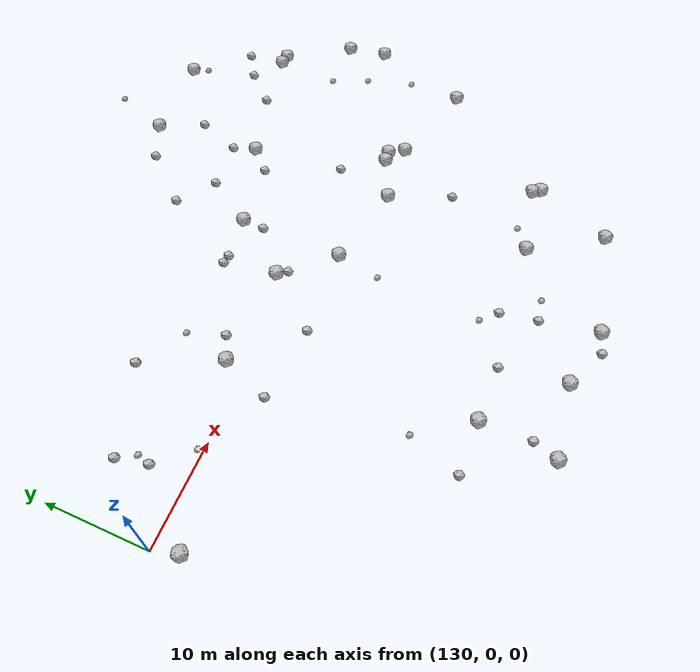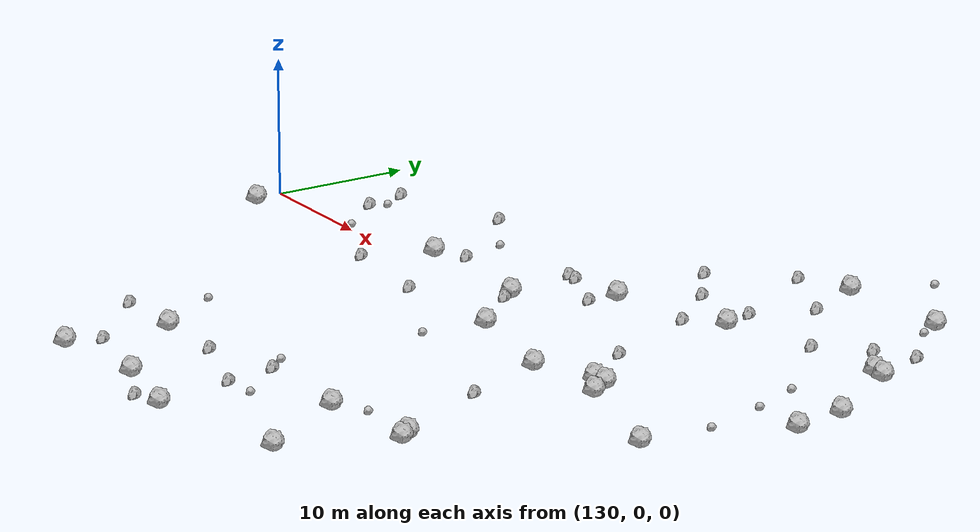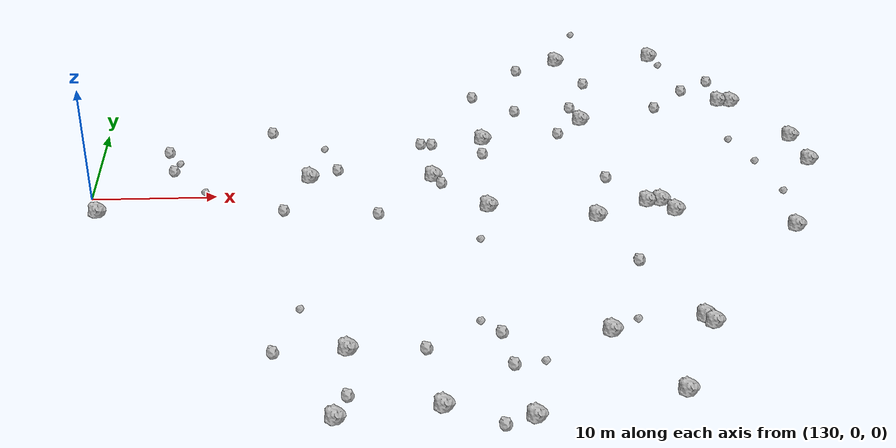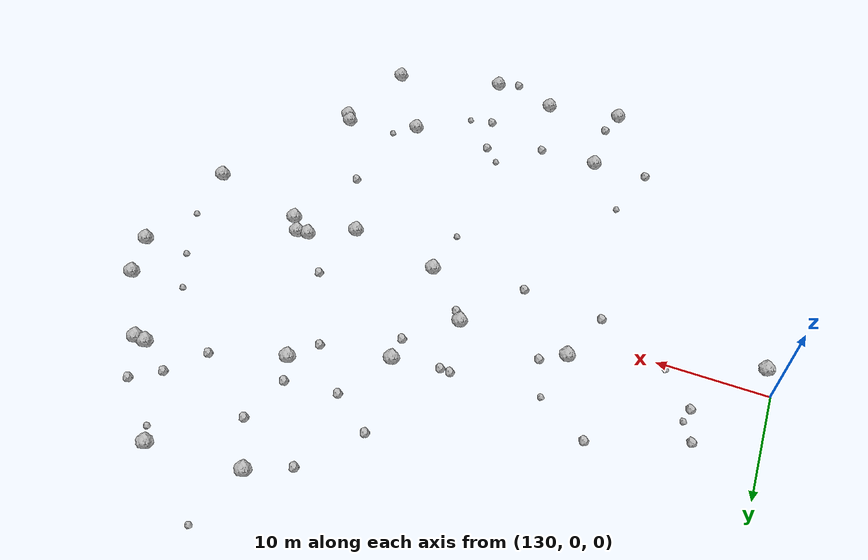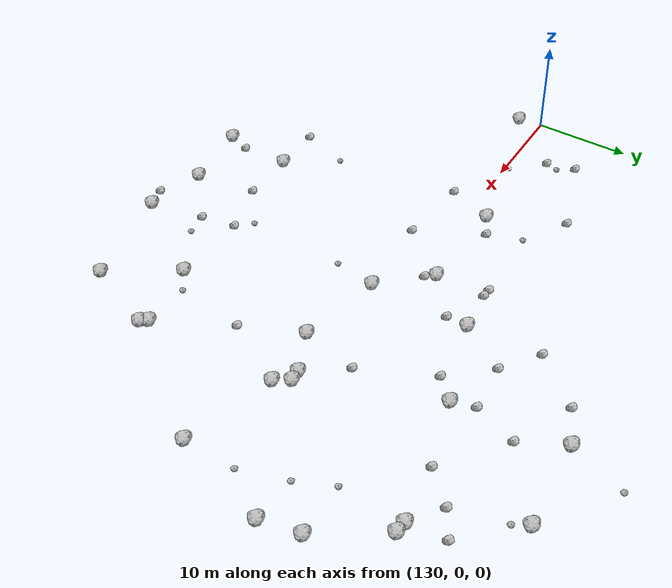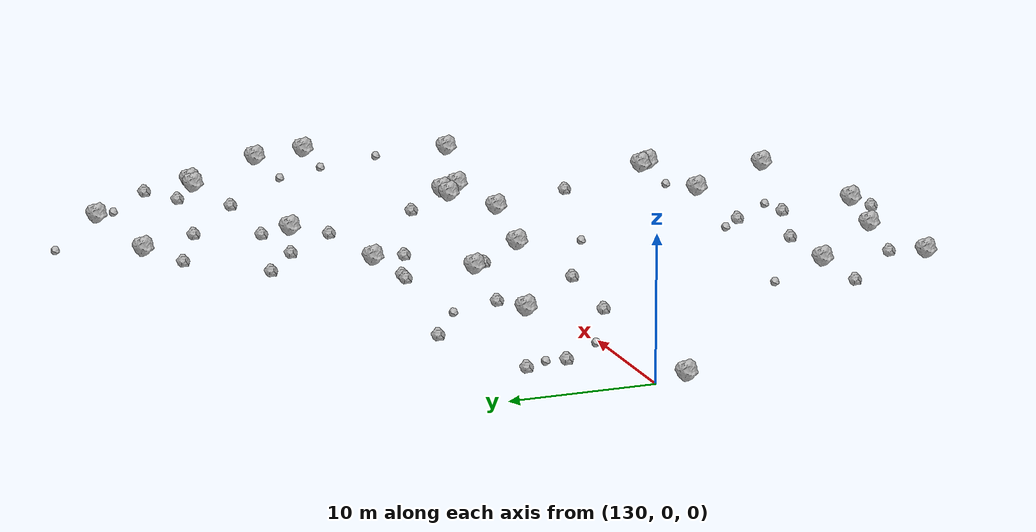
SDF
<sdf version="1.6">
 <world name="default">
  <include><uri>model://sun</uri></include>
  <model name="rock1_4_2">
   <include><uri>model://rock1</uri><pose>177.29037232289147 -18.6127513008162 0.5 0 0 0</pose></include>
  </model>
  <model name="rock1_4_3">
   <include><uri>model://rock1</uri><pose>178.22322640430951 22.167158721694875 0.5 0 0 0</pose></include>
  </model>
  <model name="rock1_4_4">
   <include><uri>model://rock1</uri><pose>176.75358904575535 -3.9160395961522916 0.5 0 0 0</pose></include>
  </model>
  <model name="rock1_4_5">
   <include><uri>model://rock1</uri><pose>150.99168697164066 -20.713417410371235 0.5 0 0 0</pose></include>
  </model>
  <model name="rock1_4_6">
   <include><uri>model://rock1</uri><pose>175.79030171845082 -2.4278279691967555 0.5 0 0 0</pose></include>
  </model>
  <model name="rock1_4_7">
   <include><uri>model://rock1</uri><pose>176.7934814069357 -17.88917487389655 0.5 0 0 0</pose></include>
  </model>
  <model name="rock1_4_8">
   <include><uri>model://rock1</uri><pose>169.45538080616674 21.585780402807238 0.5 0 0 0</pose></include>
  </model>
  <model name="rock1_4_9">
   <include><uri>model://rock1</uri><pose>183.23367770199175 13.517207561971382 0.5 0 0 0</pose></include>
  </model>
  <model name="rock1_4_10">
   <include><uri>model://rock1</uri><pose>130.806711758663 -2.415792800546072 0.5 0 0 0</pose></include>
  </model>
  <model name="rock1_4_11">
   <include><uri>model://rock1</uri><pose>184.3053484129453 13.397635039059132 0.5 0 0 0</pose></include>
  </model>
  <model name="rock1_4_12">
   <include><uri>model://rock1</uri><pose>163.67670990512386 -28.39956730896069 0.5 0 0 0</pose></include>
  </model>
  <model name="rock1_4_13">
   <include><uri>model://rock1</uri><pose>170.64599063002055 10.630516324939492 0.5 0 0 0</pose></include>
  </model>
  <model name="rock1_4_14">
   <include><uri>model://rock1</uri><pose>161.90539224137956 -2.749015519145239 0.5 0 0 0</pose></include>
  </model>
  <model name="rock1_4_15">
   <include><uri>model://rock1</uri><pose>161.96376790843988 7.6679342214143205 0.5 0 0 0</pose></include>
  </model>
  <model name="rock1_4_16">
   <include><uri>model://rock1</uri><pose>174.17047969066425 -26.101369804024326 0.5 0 0 0</pose></include>
  </model>
  <model name="rock1_4_17">
   <include><uri>model://rock1</uri><pose>157.5472442701737 -27.083793510127812 0.5 0 0 0</pose></include>
  </model>
  <model name="rock1_4_18">
   <include><uri>model://rock1</uri><pose>185.8920314042566 -6.488735281730307 0.5 0 0 0</pose></include>
  </model>
  <model name="rock1_4_19">
   <include><uri>model://rock1</uri><pose>189.0547357851238 3.3146280595538826 0.5 0 0 0</pose></include>
  </model>
  <model name="rock1_4_20">
   <include><uri>model://rock1</uri><pose>147.5140478257994 2.123570522675152 0.5 0 0 0</pose></include>
  </model>
  <model name="rock1_4_21">
   <include><uri>model://rock1</uri><pose>169.82938165540276 -19.312541326420423 0.5 0 0 0</pose></include>
  </model>
  <model name="rock1_4_22">
   <include><uri>model://rock1</uri><pose>188.2896396661268 7.22197942891286 0.5 0 0 0</pose></include>
  </model>
  <model name="rock1_4_23">
   <include><uri>model://rock1</uri><pose>174.69197144415128 -2.534296597678871 0.5 0 0 0</pose></include>
  </model>
  <model name="rock1_4_24">
   <include><uri>model://rock1</uri><pose>150.2789815314769 -28.053902911067894 0.5 0 0 0</pose></include>
  </model>
  <model name="rock1_4_25">
   <include><uri>model://rock1</uri><pose>170.45881132654165 -4.478152900177154 0.5 0 0 0</pose></include>
  </model>
  <model name="rock1_4_26">
   <include><uri>model://rock1</uri><pose>157.60685343387195 1.9565105378387422 0.5 0 0 0</pose></include>
  </model>
  <model name="rock2_4_0">
   <include><uri>model://rock2</uri><pose>172.90846826086295 -10.553871654897119 0.3 0 0 0</pose></include>
  </model>
  <model name="rock2_4_1">
   <include><uri>model://rock2</uri><pose>151.05287658480157 -25.66719972786435 0.3 0 0 0</pose></include>
  </model>
  <model name="rock2_4_2">
   <include><uri>model://rock2</uri><pose>177.34699569359674 12.682497809565561 0.3 0 0 0</pose></include>
  </model>
  <model name="rock2_4_3">
   <include><uri>model://rock2</uri><pose>165.6552891857052 19.950193505470466 0.3 0 0 0</pose></include>
  </model>
  <model name="rock2_4_4">
   <include><uri>model://rock2</uri><pose>171.5293532707046 17.291797888024732 0.3 0 0 0</pose></include>
  </model>
  <model name="rock2_4_5">
   <include><uri>model://rock2</uri><pose>164.99802037323047 12.494451238080764 0.3 0 0 0</pose></include>
  </model>
  <model name="rock2_4_6">
   <include><uri>model://rock2</uri><pose>157.58250159054074 7.148104468305583 0.3 0 0 0</pose></include>
  </model>
  <model name="rock2_4_7">
   <include><uri>model://rock2</uri><pose>158.2284435557858 1.0237823241689412 0.3 0 0 0</pose></include>
  </model>
  <model name="rock2_4_8">
   <include><uri>model://rock2</uri><pose>145.59101073328156 -2.6249507534468677 0.3 0 0 0</pose></include>
  </model>
  <model name="rock2_4_9">
   <include><uri>model://rock2</uri><pose>145.71316515370287 -20.78938311766045 0.3 0 0 0</pose></include>
  </model>
  <model name="rock2_4_10">
   <include><uri>model://rock2</uri><pose>161.9187921896881 -19.089178952528233 0.3 0 0 0</pose></include>
  </model>
  <model name="rock2_4_11">
   <include><uri>model://rock2</uri><pose>162.55793865175832 -22.72417809045537 0.3 0 0 0</pose></include>
  </model>
  <model name="rock2_4_12">
   <include><uri>model://rock2</uri><pose>153.10535366372582 -3.3481941900736594 0.3 0 0 0</pose></include>
  </model>
  <model name="rock2_4_13">
   <include><uri>model://rock2</uri><pose>144.02636086568344 9.582593549959292 0.3 0 0 0</pose></include>
  </model>
  <model name="rock2_4_14">
   <include><uri>model://rock2</uri><pose>171.73351437015424 1.3286538831243675 0.3 0 0 0</pose></include>
  </model>
  <model name="rock2_4_15">
   <include><uri>model://rock2</uri><pose>161.5403599618392 -29.021968566036396 0.3 0 0 0</pose></include>
  </model>
  <model name="rock2_4_16">
   <include><uri>model://rock2</uri><pose>161.81023544641454 5.4669897158864345 0.3 0 0 0</pose></include>
  </model>
  <model name="rock2_4_17">
   <include><uri>model://rock2</uri><pose>136.25514286743416 3.6538210163495606 0.3 0 0 0</pose></include>
  </model>
  <model name="rock2_4_18">
   <include><uri>model://rock2</uri><pose>182.7486272364059 17.25177622209427 0.3 0 0 0</pose></include>
  </model>
  <model name="rock2_4_19">
   <include><uri>model://rock2</uri><pose>149.7310537406097 3.3211329681977517 0.3 0 0 0</pose></include>
  </model>
  <model name="rock2_4_20">
   <include><uri>model://rock2</uri><pose>169.87536308874564 12.94183643473837 0.3 0 0 0</pose></include>
  </model>
  <model name="rock2_4_21">
   <include><uri>model://rock2</uri><pose>156.50898871416135 -20.727213339473614 0.3 0 0 0</pose></include>
  </model>
  <model name="rock2_4_22">
   <include><uri>model://rock2</uri><pose>168.4436325005747 8.536764490632308 0.3 0 0 0</pose></include>
  </model>
  <model name="rock2_4_23">
   <include><uri>model://rock2</uri><pose>180.18095551426285 15.64683694077523 0.3 0 0 0</pose></include>
  </model>
  <model name="rock2_4_24">
   <include><uri>model://rock2</uri><pose>161.40396680607904 15.131000928722607 0.3 0 0 0</pose></include>
  </model>
  <model name="rock2_4_25">
   <include><uri>model://rock2</uri><pose>135.56966448953992 6.669709896336919 0.3 0 0 0</pose></include>
  </model>
  <model name="rock2_4_26">
   <include><uri>model://rock2</uri><pose>156.66920765305704 7.22899767446917 0.3 0 0 0</pose></include>
  </model>
  <model name="rock3_4_0">
   <include><uri>model://rock3</uri><pose>184.5114386326538 3.51796118506153 0.2 0 0 0</pose></include>
  </model>
  <model name="rock3_4_1">
   <include><uri>model://rock3</uri><pose>182.93288882960672 7.114459276502252 0.2 0 0 0</pose></include>
  </model>
  <model name="rock3_4_2">
   <include><uri>model://rock3</uri><pose>136.58289438906522 4.92347343225385 0.2 0 0 0</pose></include>
  </model>
  <model name="rock3_4_3">
   <include><uri>model://rock3</uri><pose>161.01577988739908 -7.169330020093849 0.2 0 0 0</pose></include>
  </model>
  <model name="rock3_4_4">
   <include><uri>model://rock3</uri><pose>171.3853486968224 27.180822535404808 0.2 0 0 0</pose></include>
  </model>
  <model name="rock3_4_5">
   <include><uri>model://rock3</uri><pose>171.84608304457456 -17.845042324718882 0.2 0 0 0</pose></include>
  </model>
  <model name="rock3_4_6">
   <include><uri>model://rock3</uri><pose>148.5217198724012 6.802264047040012 0.2 0 0 0</pose></include>
  </model>
  <model name="rock3_4_7">
   <include><uri>model://rock3</uri><pose>178.85883200192157 20.704772552652088 0.2 0 0 0</pose></include>
  </model>
  <model name="rock3_4_8">
   <include><uri>model://rock3</uri><pose>164.78279667661468 -22.399040243882418 0.2 0 0 0</pose></include>
  </model>
  <model name="rock3_4_9">
   <include><uri>model://rock3</uri><pose>185.93062888917285 -1.1670031536726206 0.2 0 0 0</pose></include>
  </model>
  <model name="rock3_4_10">
   <include><uri>model://rock3</uri><pose>160.4713416303589 -17.64578014684209 0.2 0 0 0</pose></include>
  </model>
  <model name="rock3_4_11">
   <include><uri>model://rock3</uri><pose>139.04410266745612 0.4695441739771553 0.2 0 0 0</pose></include>
  </model>
  <model name="rock3_4_12">
   <include><uri>model://rock3</uri><pose>147.3999023380281 -15.718835588827725 0.2 0 0 0</pose></include>
  </model>
 </world>
</sdf>
